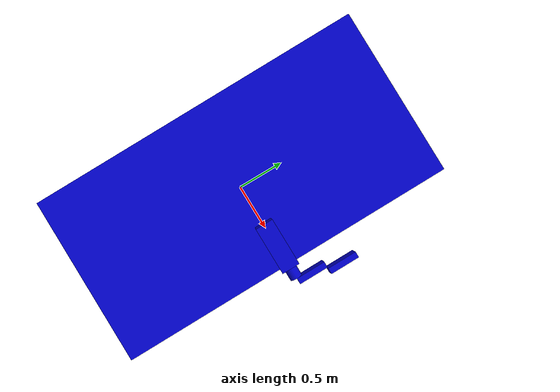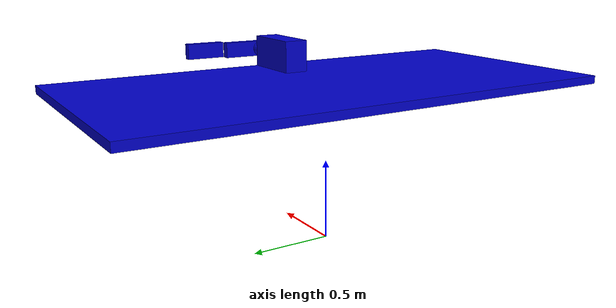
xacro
<?xml version="1.0" encoding="utf-8"?>
	<robot name="pndbt" xmlns:xacro="http://ros.org/wiki/xacro">

<!--SOME PROPERTIES!-->
		<xacro:property name="table_length" value="3" />
		<xacro:property name="table_width" value="1.5" />
		<xacro:property name="table_height" value="0.05" />

		<xacro:property name="stand_height" value="0.2" />
		<xacro:property name="stand_length" value="0.4" />
		<xacro:property name="stand_width" value="0.15" />

		<xacro:property name="rotor_length" value="0.1" />
		<xacro:property name="rotor_radius" value="0.05" />

		<xacro:property name="link1_height" value="0.05" />
		<xacro:property name="link1_length" value="0.250" />
		<xacro:property name="link1_width" value="0.10" />

		<xacro:property name="link2_height" value="0.05" />
		<xacro:property name="link2_length" value="0.250" />
		<xacro:property name="link2_width" value="0.10" />

		<xacro:property name="links_offset" value="0.06" />

		<gazebo reference="table_down">
		  <material>Gazebo/Grey</material>
		</gazebo>

		<gazebo reference="table_upper">
		  <material>Gazebo/GreyTransparent</material>
		</gazebo>

		<gazebo reference="stand">
		  <material>Gazebo/Black</material>
		</gazebo>

		<gazebo reference="rotor">
		  <material>Gazebo/Blue</material>
		</gazebo>

		<gazebo reference="link1">
		  <material>Gazebo/Yellow</material>
		</gazebo>

		<gazebo reference="link2">
		  <material>Gazebo/Red</material>
		</gazebo>

		<link name ="world"/>

      <joint name="grounding" type="fixed">
        <parent link="world"/>
        <child link="table"/>
        <origin
          xyz="0 0 1"
          rpy="0 0 0" />
      </joint>

	 	<link name="table">
	   		<visual>
	    			<geometry>
	        			<box size ="${table_width} ${table_length} ${table_height}"/>
	    			</geometry>
	    			<origin xyz ="0 0 -${table_height/2}"/>
	    			<material name="blue">
        				<color rgba="0 0 0.8 1"/>
     	    			</material>
	   		</visual>
			<inertial>
				<mass value="100"/>
				<inertia
				      ixx="1.0" ixy="0.0" ixz="0.0"
				      iyy="1.0" iyz="0.0"
				      izz="1.0"/>
			</inertial>
	 	</link>

<!--Stand!-->
	 	<link name="stand">
	   		<visual>
	    			<geometry>
	        			<box size ="${stand_length} ${stand_width} ${stand_height}"/>
	    			</geometry>
	    			<origin xyz ="0 0 ${stand_height/2}"/>
	    			<material name="blue">
        				<color rgba="0 0 0.8 1"/>
     	    			</material>
	   		</visual>
			<inertial>
				<mass value="100"/>
				<inertia
				      ixx="1.0" ixy="0.0" ixz="0.0"
				      iyy="1.0" iyz="0.0"
				      izz="1.0"/>
			</inertial>
	 	</link>

	 	<joint name="table_upper_stand" type="fixed">
	 		<parent link="table"/>
	 		<child link="stand"/>
			<origin rpy="0 0 0" xyz="${table_width/2-stand_length/2} 0 0"/>
	 	</joint>

<!--Rotor!-->
	 	<link name="rotor">
	   		<visual>
	    			<geometry>
	        			<cylinder length ="${rotor_length}" radius="${rotor_radius}"/>
	    			</geometry>
	    			<origin rpy="0 1.57075 0" xyz ="0 0 0"/>
	    			<material name="blue">
        				<color rgba="0 0 0.8 1"/>
     	    			</material>
	   		</visual>
			<inertial>
				<mass value="0.10"/>
				<inertia
				      ixx="1.0" ixy="0.0" ixz="0.0"
				      iyy="1.0" iyz="0.0"
				      izz="1.0"/>
			</inertial>
	 	</link>

	 	<joint name="stand_rotor" type="fixed">
		 	<parent link="stand"/>
		 	<child link="rotor"/>
			<origin rpy="0 0 0" xyz="${stand_length/2+rotor_length/2} 0 ${stand_height/2}"/>
	 	</joint>

	 	<link name="link1">
	   		<visual>
	    			<geometry>
	        			<box size ="${link1_length} ${link1_width} ${link1_height}"/>
	    			</geometry>
	    			<origin rpy="0 0 0" xyz ="${link1_length/2} 0 0"/>
	    			<material name="blue">
        				<color rgba="0 0 0.8 1"/>
     	    			</material>
	   		</visual>
			<inertial>
				<origin rpy="0 0 0" xyz ="-0.0284 0.0905 0"/>
				<mass value="1.4957"/>
				<inertia
				      ixx="1.0" ixy="0.0" ixz="0.0"
				      iyy="1.0" iyz="0.0"
				      izz="6.43665747695468e-06"/>
			</inertial>
	 	</link>

	 	<joint name="j1_shoulder" type="continuous">
		 	<parent link="rotor"/>
		 	<child link="link1"/>
		 	<axis xyz="0 0 1"/>
			<origin rpy="1.570796 0 1.570796" xyz="${rotor_length/2+link1_height/2} 0 0"/>
			<dynamics damping="0.000"/>
	 	</joint>

	 	<link name="link2">
	   		<visual>
	    			<geometry>
	        			<box size ="${link2_length} ${link2_width} ${link2_height}"/>
	    			</geometry>
	    			<origin xyz ="${link2_length/2} 0 0"/>
	    			<material name="blue">
        				<color rgba="0 0 0.8 1"/>
     	    			</material>
	   		</visual>
			<inertial>
				<origin rpy="0 0 0" xyz ="0.1089 0.0092 0"/>   <!-- with imu -->
				<mass value="0.1903"/> <!-- with imu -->
				<inertia
				      ixx="1.0" ixy="0.0" ixz="0.0"
				      iyy="1.0" iyz="0.0"
				      izz="6.43665747695468e-06"/>
			</inertial>
	 	</link>

	 	<joint name="j2_elbow" type="continuous">
			<axis xyz="0 0 1"/>
		 	<parent link="link1"/>
		 	<child link="link2"/>
			<origin xyz="${link1_length} 0 ${links_offset}"/>
			<dynamics damping="0.000"/>
	 	</joint>

</robot>
